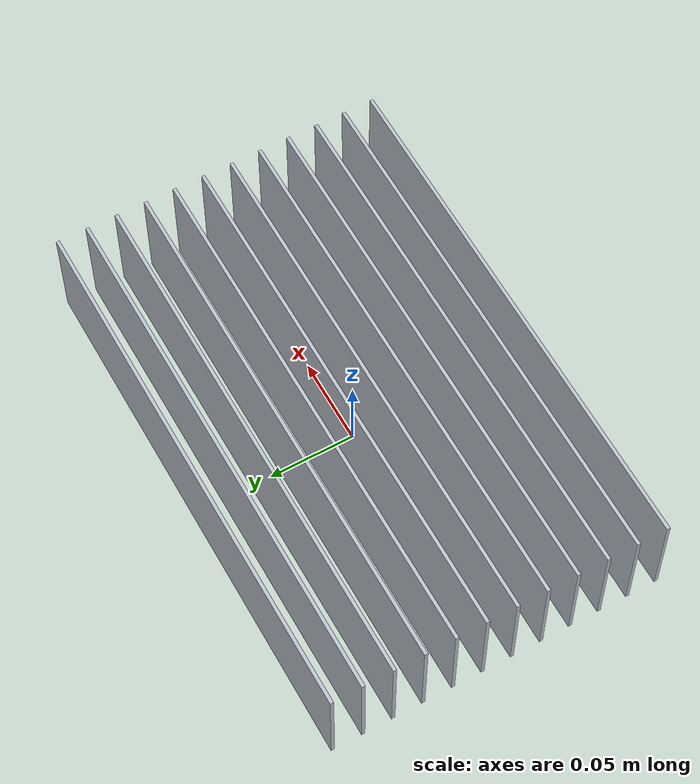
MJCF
<?xml version="1.0" encoding="utf-8"?>
<mujoco model="v2_fin_supply">
  <compiler angle="radian" autolimits="true"/>
  <default>
    <geom contype="0" conaffinity="0" density="0" group="1"/>
  </default>
  <asset>
    <material name="fin_mat" rgba="0.73 0.76 0.80 1"/>
  </asset>
  <worldbody>
    <body name="magazine">
      <geom name="raw_fin_01" type="box" size="0.150 0.001 0.030" pos="0 -0.0950 0.030" material="fin_mat"/>
      <geom name="raw_fin_02" type="box" size="0.150 0.001 0.030" pos="0 -0.0777 0.030" material="fin_mat"/>
      <geom name="raw_fin_03" type="box" size="0.150 0.001 0.030" pos="0 -0.0605 0.030" material="fin_mat"/>
      <geom name="raw_fin_04" type="box" size="0.150 0.001 0.030" pos="0 -0.0432 0.030" material="fin_mat"/>
      <geom name="raw_fin_05" type="box" size="0.150 0.001 0.030" pos="0 -0.0259 0.030" material="fin_mat"/>
      <geom name="raw_fin_06" type="box" size="0.150 0.001 0.030" pos="0 -0.0086 0.030" material="fin_mat"/>
      <geom name="raw_fin_07" type="box" size="0.150 0.001 0.030" pos="0 0.0086 0.030" material="fin_mat"/>
      <geom name="raw_fin_08" type="box" size="0.150 0.001 0.030" pos="0 0.0259 0.030" material="fin_mat"/>
      <geom name="raw_fin_09" type="box" size="0.150 0.001 0.030" pos="0 0.0432 0.030" material="fin_mat"/>
      <geom name="raw_fin_10" type="box" size="0.150 0.001 0.030" pos="0 0.0605 0.030" material="fin_mat"/>
      <geom name="raw_fin_11" type="box" size="0.150 0.001 0.030" pos="0 0.0777 0.030" material="fin_mat"/>
      <geom name="raw_fin_12" type="box" size="0.150 0.001 0.030" pos="0 0.0950 0.030" material="fin_mat"/>
    </body>
  </worldbody>
</mujoco>
